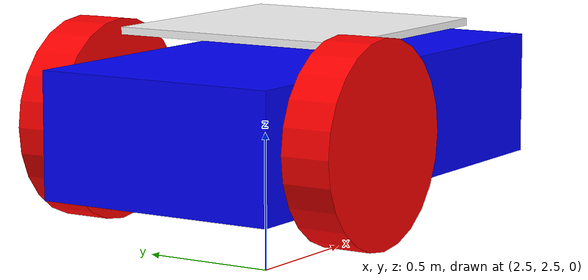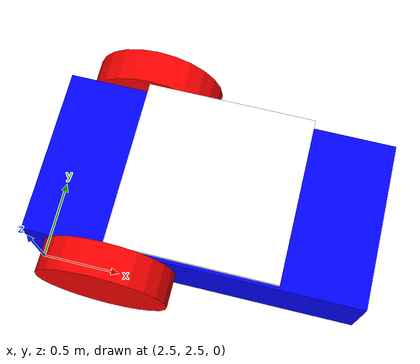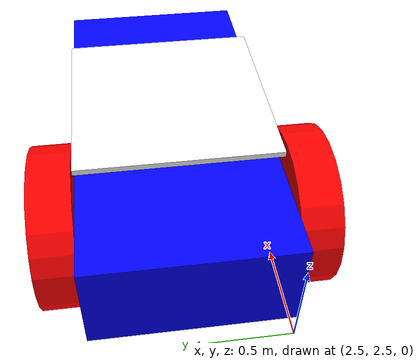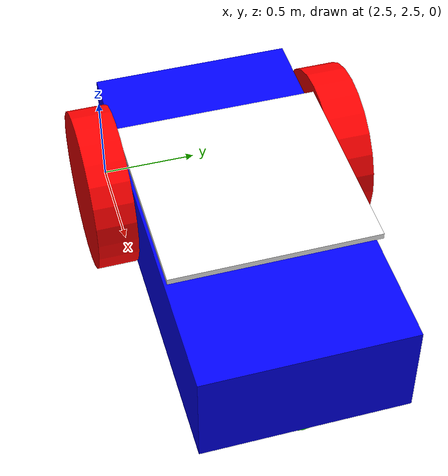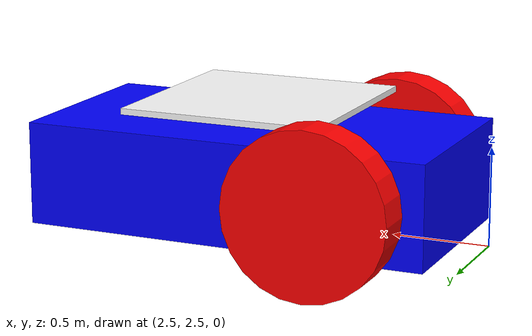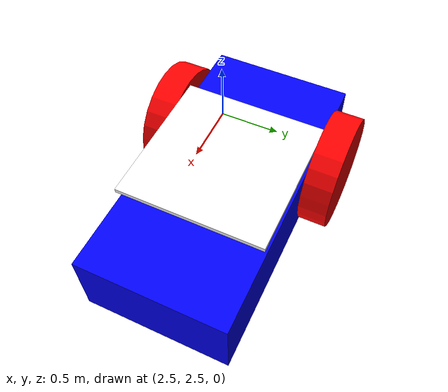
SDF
<?xml version="1.0" ?>
<sdf version="1.5">

        <model name='vehicle_blue' canonical_link='chassis'>
            <pose>3 3 0 0 0 0</pose>   <!--the pose is relative to the world by default-->

            <link name='chassis'>
                <pose relative_to='__model__'>0.5 0 0.4 0 0 0</pose>
                <inertial> <!--inertial properties of the link mass, inertia matix-->
                    <mass>1.14395</mass>
                    <inertia>
                        <ixx>0.126164</ixx>
                        <ixy>0</ixy>
                        <ixz>0</ixz>
                        <iyy>0.416519</iyy>
                        <iyz>0</iyz>
                        <izz>0.481014</izz>
                    </inertia>
                </inertial>
                <visual name='visual'>
                    <geometry>
                        <box>
                            <size>2.0 1.0 0.5</size> <!--question: this size is in meter-->
                        </box>
                    </geometry>
                    <!--let's add color to our link-->
                    <material>
                        <ambient>0.0 0.0 1.0 1</ambient>
                        <diffuse>0.0 0.0 1.0 1</diffuse>
                        <specular>0.0 0.0 1.0 1</specular>
                    </material>
                </visual>
                <collision name='collision'> <!--todo: describe why we need the collision-->
                    <geometry>
                        <box>
                            <size>2.0 1.0 0.5</size>
                        </box>
                    </geometry>
                </collision>
            </link>

            <!--White sheet-->
	    <link name='sheet'>
		<pose relative_to='chassis'>0 0 0.35 0 0 0</pose>
		<inertial> <!--inertial properties of the link mass, inertia matix-->
		    <mass>1.14395</mass>
		    <inertia>
		        <ixx>0.095329</ixx>
		        <ixy>0</ixy>
		        <ixz>0</ixz>
		        <iyy>0.381317</iyy>
		        <iyz>0</iyz>
		        <izz>0.476646</izz>
		    </inertia>
		</inertial>
		<visual name='visual'>
		    <geometry>
		        <box>
		            <size>1.0 1.0 0.03</size>
		        </box>
		    </geometry>
		    <!--Color of the link-->
		    <material>
		        <ambient>1.0 1.0 1.0 1</ambient>
		        <diffuse>1.0 1.0 1.0 1</diffuse>
		        <specular>1.0 1.0 1.0 1</specular>
		    </material>
		</visual>
		<collision name='collision'>
		    <geometry>
		        <box>
		            <size>1.0 1.0 0.03</size>
		        </box>
		    </geometry>
		</collision>
	    </link>

            <!--let's build the left wheel-->
            <link name='left_wheel'>
                <pose relative_to="chassis">-0.5 0.6 0 -1.5707 0 0</pose> <!--angles are in radian-->
                <inertial>
                    <mass>2</mass>
                    <inertia>
                        <ixx>0.145833</ixx>
                        <ixy>0</ixy>
                        <ixz>0</ixz>
                        <iyy>0.145833</iyy>
                        <iyz>0</iyz>
                        <izz>0.125</izz>
                    </inertia>
                </inertial>
                <visual name='visual'>
                    <geometry>
                        <cylinder>
                            <radius>0.4</radius>
                            <length>0.2</length>
                        </cylinder>
                    </geometry>
                    <material>
                        <ambient>1.0 0.0 0.0 1</ambient>
                        <diffuse>1.0 0.0 0.0 1</diffuse>
                        <specular>1.0 0.0 0.0 1</specular>
                    </material>
                </visual>
                <collision name='collision'>
                    <geometry>
                        <cylinder>
                            <radius>0.4</radius>
                            <length>0.2</length>
                        </cylinder>
                    </geometry>
                </collision>
            </link>

            <!--copy and paste for right wheel but change position-->
            <link name='right_wheel'>
                <pose relative_to="chassis">-0.5 -0.6 0 -1.5707 0 0</pose> <!--angles are in radian-->
                <inertial>
                    <mass>1</mass>
                    <inertia>
                        <ixx>0.145833</ixx>
                        <ixy>0</ixy>
                        <ixz>0</ixz>
                        <iyy>0.145833</iyy>
                        <iyz>0</iyz>
                        <izz>0.125</izz>
                    </inertia>
                </inertial>
                <visual name='visual'>
                    <geometry>
                        <cylinder>
                            <radius>0.4</radius>
                            <length>0.2</length>
                        </cylinder>
                    </geometry>
                    <material>
                        <ambient>1.0 0.0 0.0 1</ambient>
                        <diffuse>1.0 0.0 0.0 1</diffuse>
                        <specular>1.0 0.0 0.0 1</specular>
                    </material>
                </visual>
                <collision name='collision'>
                    <geometry>
                        <cylinder>
                            <radius>0.4</radius>
                            <length>0.2</length>
                        </cylinder>
                    </geometry>
                </collision>
            </link>

            <frame name="caster_frame" attached_to='chassis'>
                <pose>0.8 0 -0.2 0 0 0</pose>
            </frame>

            <!--caster wheel-->
            <link name='caster'>
                <pose relative_to='caster_frame'/>
                <inertial>
                    <mass>1</mass>
                    <inertia>
                        <ixx>0.1</ixx>
                        <ixy>0</ixy>
                        <ixz>0</ixz>
                        <iyy>0.1</iyy>
                        <iyz>0</iyz>
                        <izz>0.1</izz>
                    </inertia>
                </inertial>
                <visual name='visual'>
                    <geometry>
                        <sphere>
                            <radius>0.2</radius>
                        </sphere>
                    </geometry>
                    <material>
                        <ambient>0.0 1 0.0 1</ambient>
                        <diffuse>0.0 1 0.0 1</diffuse>
                        <specular>0.0 1 0.0 1</specular>
                    </material>
                </visual>
                <collision name='collision'>
                    <geometry>
                        <sphere>
                            <radius>0.2</radius>
                        </sphere>
                    </geometry>
                </collision>
            </link>

           <!--white sheet to chassis joint--> <!--pose defult value is the child-->
	    <joint name='sheet_joint' type='fixed'>
		<parent>chassis</parent>
		<child>sheet</child>
	    </joint>

	    <!-- aruco marker to chassis joint--> <!--pose defult value is the child-->
            <joint name='marker_joint' type='fixed'>
		<parent>chassis</parent>
		<child>aruco_marker</child>
	    </joint>

            <!--connecting these links together using joints-->
            <joint name='left_wheel_joint' type='revolute'> <!--continous joint is not supported yet-->
                <pose relative_to='left_wheel'/>
                <parent>chassis</parent>
                <child>left_wheel</child>
                <axis>
                    <xyz expressed_in='__model__'>0 1 0</xyz> <!--can be descired to any frame or even arbitrary frames-->
                    <limit>
                        <lower>-1.79769e+308</lower>    <!--negative infinity-->
                        <upper>1.79769e+308</upper>     <!--positive infinity-->
                    </limit>
                </axis>
            </joint>

            <joint name='right_wheel_joint' type='revolute'>
                <pose relative_to='right_wheel'/>
                <parent>chassis</parent>
                <child>right_wheel</child>
                <axis>
                    <xyz expressed_in='__model__'>0 1 0</xyz>
                    <limit>
                        <lower>-1.79769e+308</lower>    <!--negative infinity-->
                        <upper>1.79769e+308</upper>     <!--positive infinity-->
                    </limit>
                </axis>
            </joint>

            <!--different type of joints ball joint--> <!--defult value is the child-->
            <joint name='caster_wheel' type='ball'>
                <parent>chassis</parent>
                <child>caster</child>
            </joint>

            <!--diff drive plugin-->
            <plugin
            	name="differential_drive_controller"
                filename="libgazebo_ros_diff_drive.so">
                <leftJoint>left_wheel_joint</leftJoint>
                <rightJoint>right_wheel_joint</rightJoint>
                <wheelSeparation>1.2</wheelSeparation>
                <wheelDiameter>0.8</wheelDiameter>
                <commandTopic>cmd_vel</commandTopic>
                <robotBaseFrame>chassis</robotBaseFrame>
            </plugin>
        </model>
</sdf>
